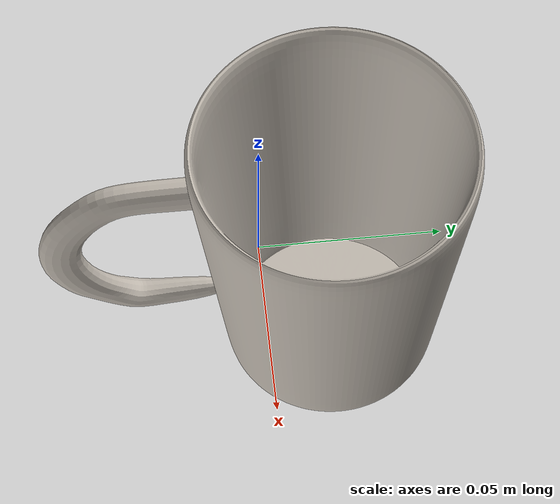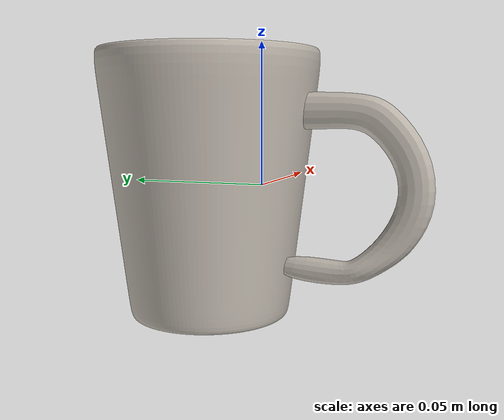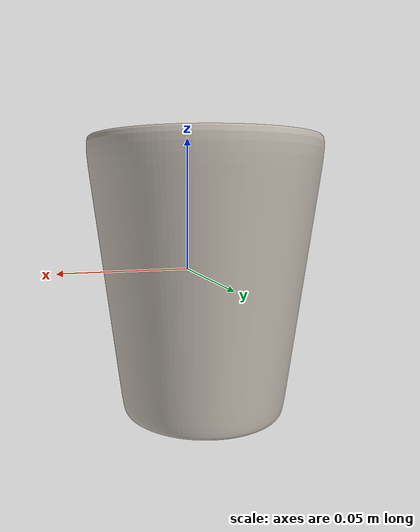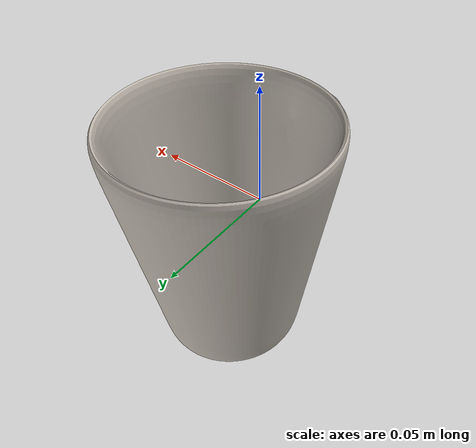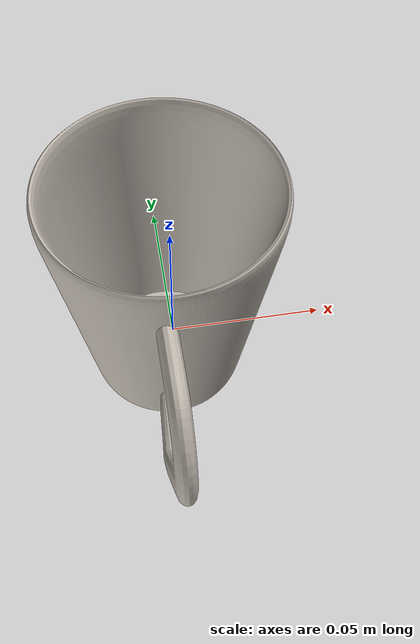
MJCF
<mujoco model="mug_21">
  <asset>
    <mesh file="visual/model_normalized_0.obj" name="model_normalized_0_vis" scale="0.12 0.12 0.12" refquat="-2.220446049250313e-16 0.0 0.0 1.0"/>
    <texture type="2d" name="image0" file="visual/image0.png"/>
    <material name="Material.323" texture="image0" specular="0.1" shininess="0.2" emission="0.15"/>
    <mesh file="collision/collision_mesh_collision_0.obj" name="mug_collision_mesh_0" scale="0.12 0.12 0.12" refquat="-2.220446049250313e-16 0.0 0.0 1.0"/>
    <mesh file="collision/collision_mesh_collision_1.obj" name="mug_collision_mesh_1" scale="0.12 0.12 0.12" refquat="-2.220446049250313e-16 0.0 0.0 1.0"/>
    <mesh file="collision/collision_mesh_collision_2.obj" name="mug_collision_mesh_2" scale="0.12 0.12 0.12" refquat="-2.220446049250313e-16 0.0 0.0 1.0"/>
    <mesh file="collision/collision_mesh_collision_3.obj" name="mug_collision_mesh_3" scale="0.12 0.12 0.12" refquat="-2.220446049250313e-16 0.0 0.0 1.0"/>
    <mesh file="collision/collision_mesh_collision_4.obj" name="mug_collision_mesh_4" scale="0.12 0.12 0.12" refquat="-2.220446049250313e-16 0.0 0.0 1.0"/>
    <mesh file="collision/collision_mesh_collision_5.obj" name="mug_collision_mesh_5" scale="0.12 0.12 0.12" refquat="-2.220446049250313e-16 0.0 0.0 1.0"/>
    <mesh file="collision/collision_mesh_collision_6.obj" name="mug_collision_mesh_6" scale="0.12 0.12 0.12" refquat="-2.220446049250313e-16 0.0 0.0 1.0"/>
    <mesh file="collision/collision_mesh_collision_7.obj" name="mug_collision_mesh_7" scale="0.12 0.12 0.12" refquat="-2.220446049250313e-16 0.0 0.0 1.0"/>
    <mesh file="collision/collision_mesh_collision_8.obj" name="mug_collision_mesh_8" scale="0.12 0.12 0.12" refquat="-2.220446049250313e-16 0.0 0.0 1.0"/>
    <mesh file="collision/collision_mesh_collision_9.obj" name="mug_collision_mesh_9" scale="0.12 0.12 0.12" refquat="-2.220446049250313e-16 0.0 0.0 1.0"/>
    <mesh file="collision/collision_mesh_collision_10.obj" name="mug_collision_mesh_10" scale="0.12 0.12 0.12" refquat="-2.220446049250313e-16 0.0 0.0 1.0"/>
    <mesh file="collision/collision_mesh_collision_11.obj" name="mug_collision_mesh_11" scale="0.12 0.12 0.12" refquat="-2.220446049250313e-16 0.0 0.0 1.0"/>
    <mesh file="collision/collision_mesh_collision_12.obj" name="mug_collision_mesh_12" scale="0.12 0.12 0.12" refquat="-2.220446049250313e-16 0.0 0.0 1.0"/>
    <mesh file="collision/collision_mesh_collision_13.obj" name="mug_collision_mesh_13" scale="0.12 0.12 0.12" refquat="-2.220446049250313e-16 0.0 0.0 1.0"/>
    <mesh file="collision/collision_mesh_collision_14.obj" name="mug_collision_mesh_14" scale="0.12 0.12 0.12" refquat="-2.220446049250313e-16 0.0 0.0 1.0"/>
    <mesh file="collision/collision_mesh_collision_15.obj" name="mug_collision_mesh_15" scale="0.12 0.12 0.12" refquat="-2.220446049250313e-16 0.0 0.0 1.0"/>
  </asset>
  <default>
    <default class="region">
      <geom group="1" conaffinity="0" contype="0" rgba="0 1 0 0" density="0"/>
    </default>
    <default class="collision">
      <geom group="3" rgba="0.5 0 0 0.5" density="0"/>
    </default>
  </default>
  <worldbody>
    <body>
      <body name="object">
        <geom density="0" friction="1.2 0.05 0.001" type="mesh" mesh="model_normalized_0_vis" conaffinity="0" contype="0" group="1" material="Material.323" mass="0.3"/>
        <geom class="region" name="reg_bbox" type="box" pos="-5.6999993195416816e-08 8.95967893192262e-05 -0.00010754400000000164" size="0.04041026698272021 0.060544699182508564 0.0483123552" density="0"/>        <geom mesh="mug_collision_mesh_0" type="mesh" class="collision" density="0"/>
        <geom mesh="mug_collision_mesh_1" type="mesh" class="collision" density="0"/>
        <geom mesh="mug_collision_mesh_2" type="mesh" class="collision" density="0"/>
        <geom mesh="mug_collision_mesh_3" type="mesh" class="collision" density="0"/>
        <geom mesh="mug_collision_mesh_4" type="mesh" class="collision" density="0"/>
        <geom mesh="mug_collision_mesh_5" type="mesh" class="collision" density="0"/>
        <geom mesh="mug_collision_mesh_6" type="mesh" class="collision" density="0"/>
        <geom mesh="mug_collision_mesh_7" type="mesh" class="collision" density="0"/>
        <geom mesh="mug_collision_mesh_8" type="mesh" class="collision" density="0"/>
        <geom mesh="mug_collision_mesh_9" type="mesh" class="collision" density="0"/>
        <geom mesh="mug_collision_mesh_10" type="mesh" class="collision" density="0"/>
        <geom mesh="mug_collision_mesh_11" type="mesh" class="collision" density="0"/>
        <geom mesh="mug_collision_mesh_12" type="mesh" class="collision" density="0"/>
        <geom mesh="mug_collision_mesh_13" type="mesh" class="collision" density="0"/>
        <geom mesh="mug_collision_mesh_14" type="mesh" class="collision" density="0"/>
        <geom mesh="mug_collision_mesh_15" type="mesh" class="collision" density="0"/>
        <geom rgba="0 0 0 0" size="0.036 0.012" pos="0 0.020 0.027" type="cylinder" name="liquid" class="region" density="0"/>        <geom rgba="0 0 0 0 " size="0.026 0.0455" pos="0 0.02 0.002" type="cylinder" name="reg_int" class="region" density="0"/>      </body>
    </body>
  </worldbody>
</mujoco>
